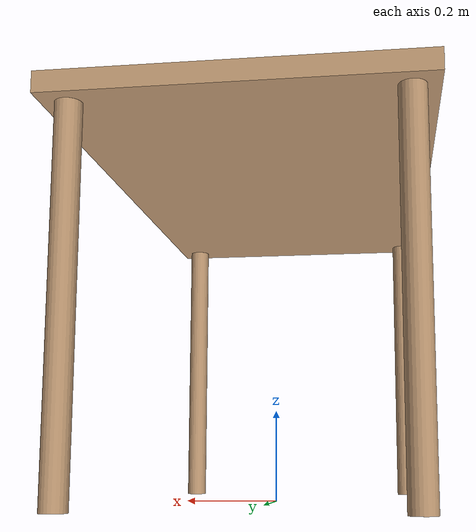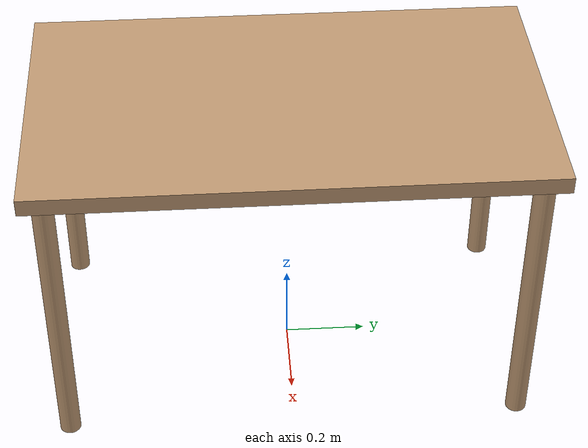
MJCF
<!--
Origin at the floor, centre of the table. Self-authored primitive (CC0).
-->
<mujoco model="work_table">
  <asset>
    <material name="mat" rgba="0.75 0.60 0.45 1"/>
  </asset>
  <worldbody>
    <body name="work_table">
      <geom name="top" type="box" size="0.35 0.6 0.02" pos="0 0 0.73" material="mat" friction="0.8 0.01 0.0002" condim="4"/>
      <geom name="leg0" type="cylinder" size="0.025 0.355" pos="0.3 0.55 0.355" material="mat" contype="0" conaffinity="0"/>
      <geom name="leg1" type="cylinder" size="0.025 0.355" pos="0.3 -0.55 0.355" material="mat" contype="0" conaffinity="0"/>
      <geom name="leg2" type="cylinder" size="0.025 0.355" pos="-0.3 0.55 0.355" material="mat" contype="0" conaffinity="0"/>
      <geom name="leg3" type="cylinder" size="0.025 0.355" pos="-0.3 -0.55 0.355" material="mat" contype="0" conaffinity="0"/>
    </body>
  </worldbody>
</mujoco>
